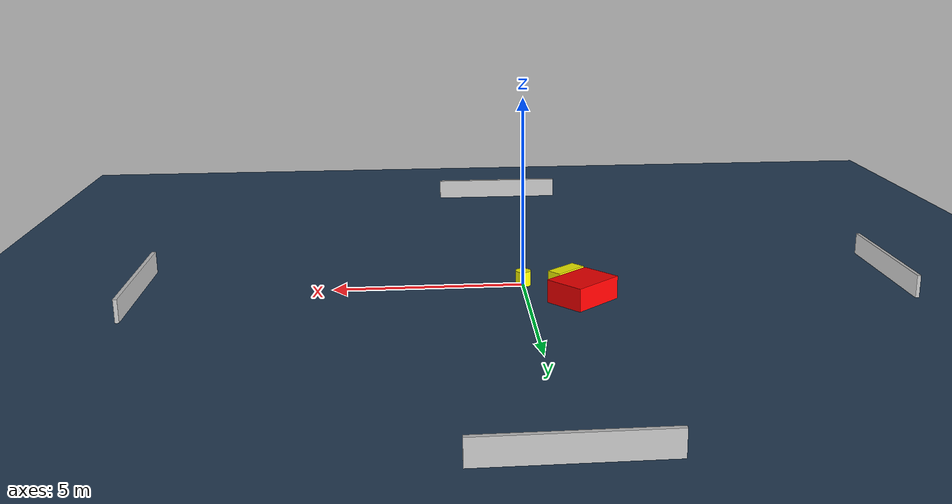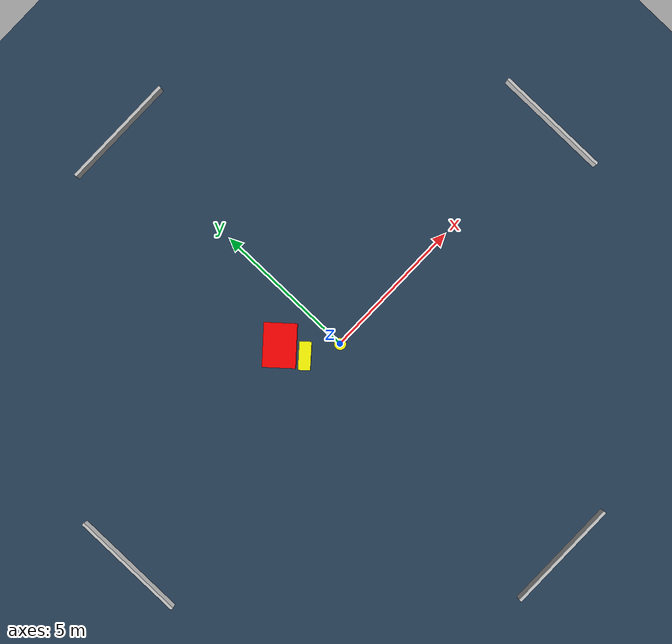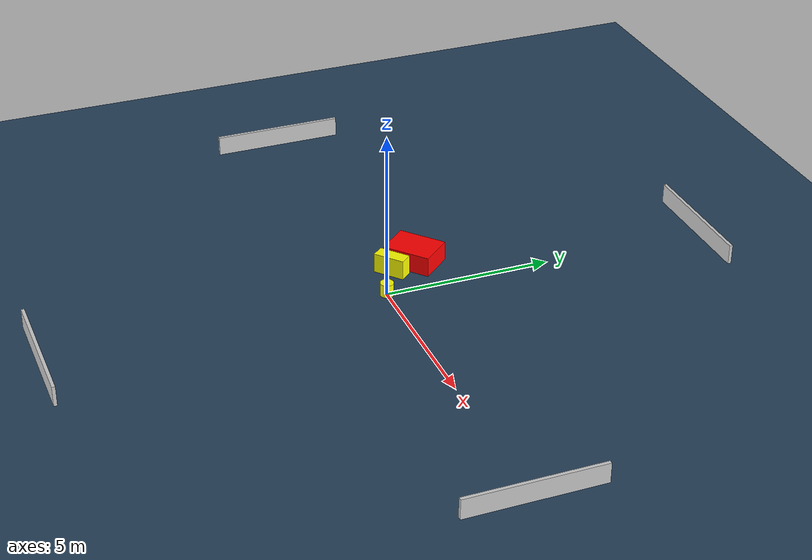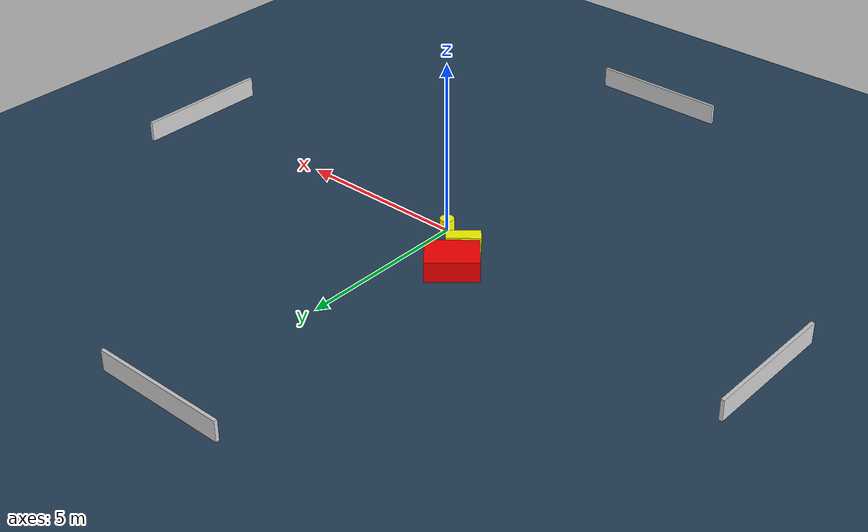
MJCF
<?xml version="1.0" ?>
<mujoco model="generated_environment">
  <option timestep="0.01" integrator="RK4" cone="elliptic"/>
  <default>
    <geom density="1"/>
  </default>
  <asset>
    <texture builtin="gradient" height="3072" name="skybox" rgb1="0.3 0.5 0.7" rgb2="0 0 0" type="skybox" width="512"/>
    <texture builtin="checker" height="300" name="groundplane" rgb1="0.2 0.3 0.4" rgb2="0.1 0.2 0.3" type="2d" width="300"/>
    <material name="groundplane" reflectance="0.2" texrepeat="5 5" texture="groundplane"/>
  </asset>
  <worldbody>
    <light dir="0 0 -1" directional="true" pos="0 0 1.5"/>
    <geom condim="3" friction="0.5 0.005 0.001" material="groundplane" name="floor" pos="0 0 0" size="0 0 0.05" type="plane"/>
    <body name="walls">
      <geom name="wall_1" condim="4" pos="-10.0 0.0 0.3" rgba="0.800000011920929 0.800000011920929 0.800000011920929 1.0" size="0.05 2.0 0.3" type="box"/>
      <geom name="wall_2" condim="4" pos="10.0 0.0 0.3" rgba="0.800000011920929 0.800000011920929 0.800000011920929 1.0" size="0.05 2.0 0.3" type="box"/>
      <geom name="wall_3" condim="4" pos="0.0 -10.0 0.3" rgba="0.800000011920929 0.800000011920929 0.800000011920929 1.0" size="2.0 0.05 0.3" type="box"/>
      <geom name="wall_4" condim="4" pos="0.0 10.0 0.3" rgba="0.800000011920929 0.800000011920929 0.800000011920929 1.0" size="2.0 0.05 0.3" type="box"/>
    </body>
    <body name="robot">
      <joint name="joint_x" type="slide" pos="0 0 0" axis="1 0 0"/>
      <joint name="joint_y" type="slide" pos="0 0 0" axis="0 1 0"/>
      <geom name="robot" type="cylinder" pos="0.0 0.0 0.2" size="0.2 0.2 0.0" mass="5.0" friction="1.0 0.005 0.0001" condim="4" rgba="1.0 1.0 0.0 1.0"/>
    </body>
    <body name="obstacle_1_movable">
      <geom name="obstacle_1_movable" condim="4" pos="-1.074532352204837 0.5637038231061823 0.3" euler="0 0 130.68200146177554" friction="0.0 0.005 0.001" rgba="1.0 1.0 0.0 1.0" size="0.20022584584281894 0.47147722429088557 0.3" type="box" mass="0.1"/>
      <joint type="free"/>
    </body>
    <body name="obstacle_2_static">
      <geom name="obstacle_2_static" condim="4" pos="-1.3932298394839702 1.3907244596954373 0.3" euler="0 0 311.1614419596764" friction="0.0 0.005 0.001" rgba="1.0 0.0 0.0 1.0" size="0.5469082667114479 0.7320923363770371 0.3" type="box"/>
    </body>
  </worldbody>
  <actuator>
    <motor name="actuator_x" joint="joint_x" gear="1" ctrlrange="-1 1"/>
    <motor name="actuator_y" joint="joint_y" gear="1" ctrlrange="-1 1"/>
  </actuator>
</mujoco>
